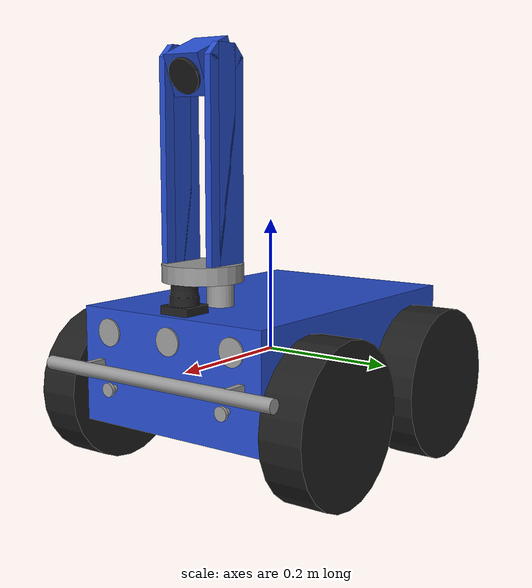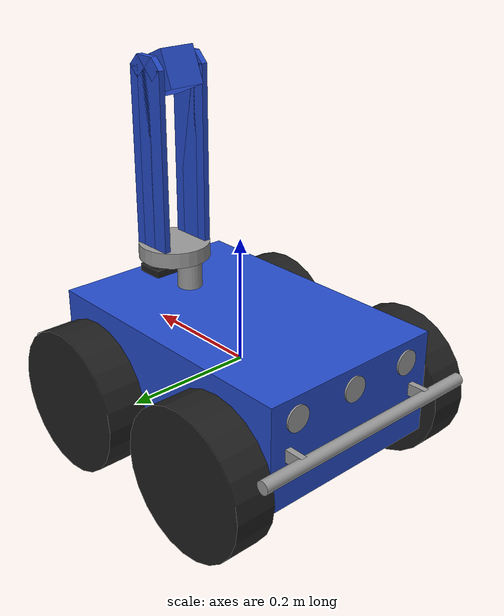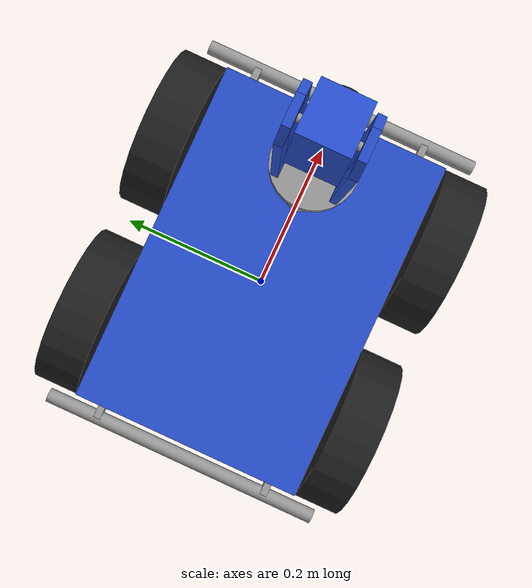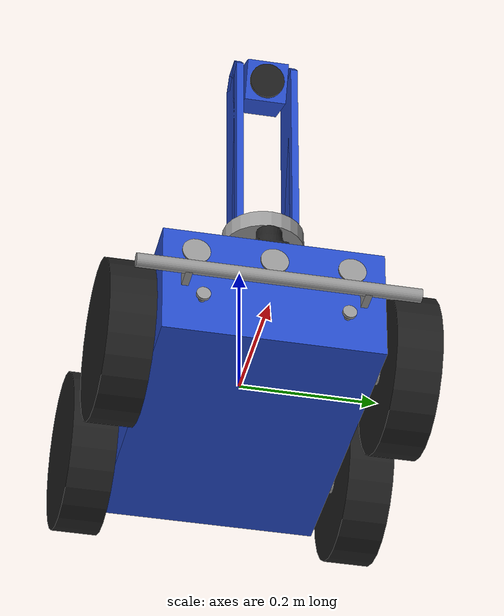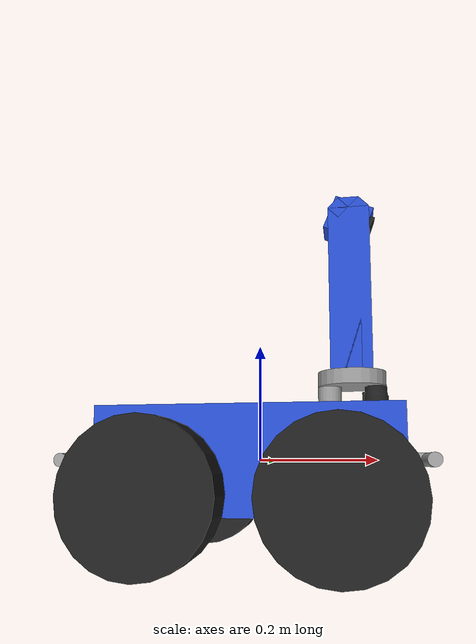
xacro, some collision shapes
<?xml version="1.0"?>
<robot name="shoddy" xmlns:xacro="http://www.ros.org/wiki/xacro">
    <xacro:include filename="$(find sim_pkg)/urdfs/robot.plugins.xacro"/>

    <xacro:include filename="$(find sim_pkg)/urdfs/materials.urdf.xacro"/>

    <xacro:include filename="$(find sim_pkg)/urdfs/base_macro.urdf.xacro"/>
    <xacro:include filename="$(find sim_pkg)/urdfs/wheel_macro.urdf.xacro"/>
    <xacro:include filename="$(find sim_pkg)/urdfs/imu_macro.urdf.xacro"/>
    <xacro:include filename="$(find sim_pkg)/urdfs/lidar_macro.urdf.xacro"/>
    <xacro:include filename="$(find sim_pkg)/urdfs/camera_macro.urdf.xacro"/>
    <xacro:include filename="$(find sim_pkg)/urdfs/ultrasonic_sensor_macro.urdf.xacro"/>

    <!-- Body -->
    <xacro:base_macro name="base_link"/>

    <!-- Wheels -->
    <xacro:wheel_macro
        side="left"
        part="front"
        xyz="${SHAFT_FRONT_X} 0.2 ${SHAFT_FRONT_Z}"
        parent="base_link"/>
    <xacro:wheel_macro
        side="left"
        part="rear"
        xyz="${SHAFT_REAR_X} 0.2 ${SHAFT_REAR_Z}"
        parent="base_link"/>
    <xacro:wheel_macro
        side="right"
        part="front"
        xyz="${SHAFT_FRONT_X} -0.2 ${SHAFT_FRONT_Z}"
        parent="base_link"/>
    <xacro:wheel_macro
        side="right"
        part="rear"
        xyz="${SHAFT_REAR_X} -0.2 ${SHAFT_REAR_Z}"
        parent="base_link"/>

    <!-- IMU -->
    <xacro:imu_macro name="imu_link" xyz="0.0 0.0 0.0" parent="base_link"/>

    <!-- LIDAR -->
    <xacro:lidar_macro name="sensor_laser_link" parent="base_link"/>

    <!-- Camera -->
    <xacro:camera_macro name="camera_link" parent="base_link"/>

    <!-- Ultrasonic sensors -->
    <xacro:ultrasonic_sensor_macro
        name="ultrasonic_sensor_front_left_link"
        xyz="${BASE_SIZE_X/2} ${-BASE_SIZE_Y/2*0.7} 0.05"
        parent="base_link"/>
    <xacro:ultrasonic_sensor_macro
        name="ultrasonic_sensor_front_middle_link"
        xyz="${BASE_SIZE_X/2} 0.0 0.05"
        parent="base_link"/>
    <xacro:ultrasonic_sensor_macro
        name="ultrasonic_sensor_front_right_link"
        xyz="${BASE_SIZE_X/2} ${BASE_SIZE_Y/2*0.7} 0.05"
        parent="base_link"/>
    <xacro:ultrasonic_sensor_macro
        name="ultrasonic_sensor_rear_left_link"
        xyz="${-BASE_SIZE_X/2} ${-BASE_SIZE_Y/2*0.7} 0.05"
        parent="base_link"/>
    <xacro:ultrasonic_sensor_macro
        name="ultrasonic_sensor_rear_middle_link"
        xyz="${-BASE_SIZE_X/2} 0.0 0.05"
        parent="base_link"/>
    <xacro:ultrasonic_sensor_macro
        name="ultrasonic_sensor_rear_right_link"
        xyz="${-BASE_SIZE_X/2} ${BASE_SIZE_Y/2*0.7} 0.05"
        parent="base_link"/>

</robot>

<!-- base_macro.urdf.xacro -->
<robot name="shoddy" xmlns:xacro="http://wiki.ros.org/xacro">
    <!-- Global properties ================================================= -->
    <!-- Shaft -->
    <xacro:property name="shaft_radius" value="0.015"/>
    <xacro:property name="shaft_length" value="0.38"/>

    <xacro:property name="SHAFT_FRONT_X" value="0.14"/>
    <xacro:property name="SHAFT_FRONT_Y" value="0.0"/>
    <xacro:property name="SHAFT_FRONT_Z" value="-0.05"/>

    <xacro:property name="SHAFT_REAR_X" value="-0.14"/>
    <xacro:property name="SHAFT_REAR_Y" value="0.0"/>
    <xacro:property name="SHAFT_REAR_Z" value="-0.05"/>
    <!-- Shaft -->

    <!-- Base -->
    <xacro:property name="BASE_SIZE_X" value="0.47"/>
    <xacro:property name="BASE_SIZE_Y" value="0.315"/>
    <xacro:property name="BASE_SIZE_Z" value="0.168"/>
    <!-- Base -->
    <!-- ================================================= Global properties -->

    <xacro:macro name="base_macro" params="name">
        <!-- Properties ==================================================== -->
        <!-- Bumper -->
        <xacro:property name="holder_size_x" value="0.03"/>
        <xacro:property name="holder_size_y" value="0.01"/>
        <xacro:property name="holder_size_z" value="0.02"/>

        <xacro:property name="holder_front_left_xyz" value="${BASE_SIZE_X/2 + holder_size_x/2} ${-BASE_SIZE_Y/2*0.8} 0.0"/>
        <xacro:property name="holder_front_right_xyz" value="${BASE_SIZE_X/2 + holder_size_x/2} ${BASE_SIZE_Y/2*0.8} 0.0"/>
        <xacro:property name="holder_rear_left_xyz" value="${-BASE_SIZE_X/2 - holder_size_x/2} ${-BASE_SIZE_Y/2*0.8} 0.0"/>
        <xacro:property name="holder_rear_right_xyz" value="${-BASE_SIZE_X/2 - holder_size_x/2} ${BASE_SIZE_Y/2*0.8} 0.0"/>

        <xacro:property name="bumper_radius" value="0.01"/>
        <xacro:property name="bumper_length" value="0.4"/>

        <xacro:property name="bumper_front_xyz" value="${BASE_SIZE_X/2 + holder_size_x} 0.0 0.0"/>
        <xacro:property name="bumper_rear_xyz" value="${-BASE_SIZE_X/2 - holder_size_x} 0.0 0.0"/>

        <xacro:property name="bumper_material" value="Grey"/>
        <!-- Bumper -->

        <!-- Accessory -->
        <xacro:property name="accessory_front_radius" value="0.01"/>
        <xacro:property name="accessory_front_length" value="0.005"/>
        <xacro:property name="accessory_rear_radius" value="0.005"/>
        <xacro:property name="accessory_rear_length" value="0.01"/>

        <xacro:property name="accessory_left_front_xyz" value="${BASE_SIZE_X/2 + accessory_front_length/2 + accessory_rear_length} ${-BASE_SIZE_Y/2*0.65} -0.03"/>
        <xacro:property name="accessory_left_rear_xyz" value="${BASE_SIZE_X/2 + accessory_rear_length/2} ${-BASE_SIZE_Y/2*0.65} -0.03"/>
        <xacro:property name="accessory_right_front_xyz" value="${BASE_SIZE_X/2 + accessory_front_length/2 + accessory_rear_length} ${BASE_SIZE_Y/2*0.65} -0.03"/>
        <xacro:property name="accessory_right_rear_xyz" value="${BASE_SIZE_X/2 + accessory_rear_length/2} ${BASE_SIZE_Y/2*0.65} -0.03"/>

        <xacro:property name="accessory_material" value="Grey"/>
        <!-- Accessory -->

        <!-- Shaft -->
        <xacro:property name="shaft_material" value="Grey"/>
        <!-- Shaft -->

        <!-- Base -->
        <xacro:property name="BASE_SIZE_X" value="0.47"/>
        <xacro:property name="BASE_SIZE_Y" value="0.315"/>
        <xacro:property name="BASE_SIZE_Z" value="0.168"/>
        <xacro:property name="base_mass" value="30"/>

        <xacro:property name="base_material" value="Blue"/>
        <!-- Base -->
        <!-- ==================================================== Properties -->

        <!-- Macros ======================================================== -->
        <!-- Bumper -->
        <!-- Holder -->
        <xacro:macro name="holder_macro" params="name xyz parent">
            <link name="${name}_link">
                <visual>
                    <origin xyz="0.0 0.0 0.0" rpy="0.0 0.0 0.0"/>
                    <geometry>
                        <box size="${holder_size_x} ${holder_size_y} ${holder_size_z}"/>
                    </geometry>
                    <material name="${bumper_material}"/>
                </visual>

                <collision>
                    <origin xyz="0.0 0.0 0.0" rpy="0.0 0.0 0.0"/>
                    <geometry>
                        <box size="${holder_size_x} ${holder_size_y} ${holder_size_z}"/>
                    </geometry>
                </collision>

                <inertial>
                    <origin xyz="0.0 0.0 0.0" rpy="0.0 0.0 0.0"/>
                    <mass value="0.0"/>
                    <inertia ixx="0.0" ixy="0.0" ixz="0.0" iyy="0.0" iyz="0.0" izz="0.0"/>
                </inertial>
            </link>

            <joint name="${name}_joint" type="fixed">
                <origin xyz="${xyz}" rpy="0.0 0.0 0.0"/>
                <parent link="${parent}"/>
                <child link="${name}_link"/>
            </joint>

            <gazebo reference="${name}_link">
                <material>Gazebo/Grey</material>
            </gazebo>

        </xacro:macro>
        <!-- Holder -->

        <!-- Rod -->
        <xacro:macro name="bumper_macro" params="name xyz parent">
            <link name="${name}_link">
                <visual>
                    <origin xyz="0.0 0.0 0.0" rpy="${pi/2} 0.0 0.0"/>
                    <geometry>
                        <cylinder radius="${bumper_radius}" length="${bumper_length}"/>
                    </geometry>
                    <material name="${bumper_material}"/>
                </visual>

                <collision>
                    <origin xyz="0.0 0.0 0.0" rpy="${pi/2} 0.0 0.0"/>
                    <geometry>
                        <cylinder radius="${bumper_radius}" length="${bumper_length}"/>
                    </geometry>
                </collision>

                <inertial>
                    <origin xyz="0.0 0.0 0.0" rpy="${pi/2} 0.0 0.0"/>
                    <mass value="0.0"/>
                    <inertia ixx="0.0" ixy="0.0" ixz="0.0" iyy="0.0" iyz="0.0" izz="0.0"/>
                </inertial>
            </link>

            <joint name="${name}_joint" type="fixed">
                <origin xyz="${xyz}" rpy="0.0 0.0 0.0"/>
                <parent link="${parent}"/>
                <child link="${name}_link"/>
            </joint>

            <gazebo reference="${name}_link">
                <material>Gazebo/Grey</material>
            </gazebo>

        </xacro:macro>
        <!-- Rod -->
        <!-- Bumper -->

        <!-- Accessory -->
        <xacro:macro name="accessory_macro" params="name radius length xyz parent">
            <link name="${name}_link">
                <visual>
                    <origin xyz="0.0 0.0 0.0" rpy="0.0 ${pi/2} 0.0"/>
                    <geometry>
                        <cylinder radius="${radius}" length="${length}"/>
                    </geometry>
                    <material name="${accessory_material}"/>
                </visual>

                <collision>
                    <origin xyz="0.0 0.0 0.0" rpy="0.0 ${pi/2} 0.0"/>
                    <geometry>
                        <cylinder radius="${radius}" length="${length}"/>
                    </geometry>
                </collision>

                <inertial>
                    <origin xyz="0.0 0.0 0.0" rpy="0.0 ${pi/2} 0.0"/>
                    <mass value="0.0"/>
                    <inertia ixx="0.0" ixy="0.0" ixz="0.0" iyy="0.0" iyz="0.0" izz="0.0"/>
                </inertial>
            </link>

            <joint name="${name}_joint" type="fixed">
                <origin xyz="${xyz}" rpy="0.0 0.0 0.0"/>
                <parent link="${parent}"/>
                <child link="${name}_link"/>
            </joint>

            <gazebo reference="${name}_link">
                <material>Gazebo/Grey</material>
            </gazebo>

        </xacro:macro>
        <!-- Accessory -->

        <!-- Shaft -->
        <xacro:macro name="shaft_macro" params="name xyz parent">
            <link name="${name}_link">
                <visual>
                    <origin xyz="0.0 0.0 0.0" rpy="${pi/2} 0.0 0.0"/>
                    <geometry>
                        <cylinder radius="${shaft_radius}" length="${shaft_length}"/>
                    </geometry>

                    <material name="${shaft_material}"/>
                </visual>

                <inertial>
                    <origin xyz="0.0 0.0 0.0" rpy="${pi/2} 0.0 0.0"/>
                    <mass value="0.0"/>
                    <inertia ixx="0.0" ixy="0.0" ixz="0.0" iyy="0.0" iyz="0.0" izz="0.0"/>
                </inertial>
            </link>

            <joint name="${name}_joint" type="fixed">
                <origin xyz="${xyz}" rpy="0.0 0.0 0.0"/>
                <parent link="${parent}"/>
                <child link="${name}_link"/>
            </joint>

            <gazebo reference="${name}_link">
                <material>Gazebo/Grey</material>
            </gazebo>

        </xacro:macro>
        <!-- Shaft -->

        <!-- Base -->
        <xacro:macro name="base_macro" params="name">
            <link name="${name}">
                <visual>
                    <origin xyz="0.0 0.0 0.0" rpy="0.0 0.0 0.0"/>
                    <geometry>
                        <box size="${BASE_SIZE_X} ${BASE_SIZE_Y} ${BASE_SIZE_Z}"/>
                    </geometry>
                    <material name="${base_material}"/>
                </visual>

                <collision>
                    <origin xyz="0.0 0.0 0.0" rpy="0.0 0.0 0.0"/>
                    <geometry>
                        <box size="${BASE_SIZE_X} ${BASE_SIZE_Y} ${BASE_SIZE_Z}"/>
                    </geometry>
                </collision>

                <inertial>
                    <origin xyz="0.0 0.0 0.0" rpy="0.0 0.0 0.0"/>
                    <mass value="${base_mass}"/>
                    <inertia ixx="1.0" ixy="0.0" ixz="0.0" iyy="1.0" iyz="0.0" izz="1.0"/>
                </inertial>
            </link>

            <gazebo reference="${name}_link">
                <material>Gazebo/Blue</material>
            </gazebo>

        </xacro:macro>
        <!-- Base -->
        <!-- ======================================================== Macros -->

        <!-- Links ========================================================= -->
        <!-- Base -->
        <xacro:base_macro name="${name}"/>
        <!-- Base -->

        <!-- Shafts -->
        <xacro:shaft_macro name="shaft_front"
                           xyz="${SHAFT_FRONT_X} ${SHAFT_FRONT_Y} ${SHAFT_FRONT_Z}"
                           parent="${name}"/>
        <xacro:shaft_macro name="shaft_rear"
                           xyz="${SHAFT_REAR_X} ${SHAFT_REAR_Y} ${SHAFT_REAR_Z}"
                           parent="${name}"/>
        <!-- Shafts -->

        <!-- Bumpers -->
        <xacro:bumper_macro name="bumper_front"
                            xyz="${bumper_front_xyz}"
                            parent="${name}"/>
        <xacro:holder_macro name="holder_front_left"
                            xyz="${holder_front_left_xyz}"
                            parent="${name}"/>
        <xacro:holder_macro name="holder_front_right"
                            xyz="${holder_front_right_xyz}"
                            parent="${name}"/>

        <xacro:bumper_macro name="bumper_rear"
                            xyz="${bumper_rear_xyz}"
                            parent="${name}"/>
        <xacro:holder_macro name="holder_rear_left"
                            xyz="${holder_rear_left_xyz}"
                            parent="${name}"/>
        <xacro:holder_macro name="holder_rear_right"
                            xyz="${holder_rear_right_xyz}"
                            parent="${name}"/>
        <!-- Bumpers -->

        <!-- Accessory-->
        <xacro:accessory_macro name="accessory_left_front"
                               radius="${accessory_front_radius}"
                               length="${accessory_front_length}"
                               xyz="${accessory_left_front_xyz}"
                               parent="${name}"/>
        <xacro:accessory_macro name="accessory_left_rear"
                               radius="${accessory_rear_radius}"
                               length="${accessory_rear_length}"
                               xyz="${accessory_left_rear_xyz}"
                               parent="${name}"/>

        <xacro:accessory_macro name="accessory_right_front"
                               radius="${accessory_front_radius}"
                               length="${accessory_front_length}"
                               xyz="${accessory_right_front_xyz}"
                               parent="${name}"/>
        <xacro:accessory_macro name="accessory_right_rear"
                               radius="${accessory_rear_radius}"
                               length="${accessory_rear_length}"
                               xyz="${accessory_right_rear_xyz}"
                               parent="${name}"/>
        <!-- Accessory-->
        <!-- ======================================================= Links -->
    </xacro:macro>
</robot>

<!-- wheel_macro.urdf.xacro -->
<robot name="shoddy" xmlns:xacro="http://www.ros.org/wiki/xacro">
    <xacro:macro name="wheel_macro" params="side part xyz parent">
        <!-- Properties ==================================================== -->
        <xacro:property name="radius" value="0.115"/>
        <xacro:property name="length" value="0.065"/>
        <xacro:property name="mass" value="0.5"/>

        <xacro:property name="Cr" value="${0.001/0.033}"/>
        <xacro:property name="Cl" value="${0.001/0.018}"/>
        <xacro:property name="ixx" value="${1/12.0*mass*(3*radius*radius + length*length)}"/>
        <xacro:property name="iyy" value="${ixx}"/>
        <xacro:property name="izz" value="${0.5*mass*radius*radius}"/>

        <!-- ==================================================== Properties -->

        <!-- Link ========================================================== -->
        <link name="wheel_${side}_${part}_link">
            <visual>
                <origin xyz="0.0 0.0 0.0" rpy="${pi/2*0.0} 0.0 0.0"/>
                <geometry>
                    <mesh filename="file://$(find sim_pkg)/meshes/wheels/${side}_tire.stl" scale="${Cr*radius} ${Cl*length} ${Cr*radius}"/>
                </geometry>
                <material name="Black"/>
            </visual>
            <collision>
                <origin xyz="0.0 0.0 0.0" rpy="${pi/2} 0.0 0.0"/>
                <geometry>
                    <cylinder radius="${radius}" length="${length}"/>
                </geometry>
                <surface>
                    <friction>
                        <torsional>
                            <coefficient>0.0</coefficient>
                            <use_patch>1</use_patch>
                        </torsional>

                        <ode>
                            <mu>1.0</mu>
                            <mu2>0.05</mu2>
                        </ode>
                    </friction>
                </surface>

            </collision>
            <inertial>
                <origin xyz="0.0 0.0 0.0" rpy="${pi/2} 0 0"/>
                <mass value="${mass}"/>
            <inertia ixx="${ixx}" ixy="0.0" ixz="0.0"
                         iyy="${iyy}" iyz="0.0"
                         izz="${izz}"/>
            </inertial>

        </link>

        <joint name="wheel_${side}_${part}_to_base_joint" type="continuous">
            <axis xyz="0.0 1.0 0.0"/>
            <origin xyz="${xyz}" rpy="0.0 0.0 0.0"/>
            <parent link="${parent}"/>
            <child link="wheel_${side}_${part}_link"/>
        </joint>

        <gazebo reference="wheel_${side}_${part}_link">
            <mu1 value="1.0"/>
            <mu2 value="1.0"/>
            <kp value="100000.0"/>
            <kd value="1.0"/>
            <minDepth>0.002</minDepth>
            <maxVel>0.3</maxVel>
            <fdir1>0 1 0</fdir1>
            <material>Gazebo/FlatBlack</material>
        </gazebo>
        <!-- ========================================================== Link -->
    </xacro:macro>
</robot>

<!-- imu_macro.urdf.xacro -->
<robot name="shoddy" xmlns:xacro="http://wiki.ros.org/xacro">
    <xacro:macro name="imu_macro" params="name xyz parent">
        <!-- Properties ==================================================== -->
        <xacro:property name="box_size_x" value="0.001"/>
        <xacro:property name="box_size_y" value="0.001"/>
        <xacro:property name="box_size_z" value="0.001"/>

        <xacro:property name="imu_material" value="Black"/>
        <!-- ==================================================== Properties -->

        <!-- Link ========================================================== -->
        <link name="${name}">
            <visual>
                <origin rpy="0.0 0.0 0.0" xyz="0.0 0.0 0.0"/>
                <geometry>
                    <box size="${box_size_x} ${box_size_y} ${box_size_z}"/>
                </geometry>
                <material name="${imu_material}"/>
            </visual>

            <collision>
                <origin rpy="0 0 0" xyz="0 0 0"/>
                <geometry>
                    <box size="${box_size_x} ${box_size_y} ${box_size_z}"/>
                </geometry>
            </collision>

            <inertial>
                <mass value="0.1"/>
                <origin rpy="0.0 0.0 0.0" xyz="0.0 0.0 0.0"/>
                <!-- zmena ienrtial z 1e-6 -->
                <inertia ixx="0.0" ixy="0.0" ixz="0.0" iyy="0.0" iyz="0.0" izz="0.0"/>
            </inertial>
        </link>

        <joint name="imu_joint" type="fixed">
            <axis xyz="0.0 0.0 0.0"/>
            <origin xyz="${xyz}"/>
            <parent link="${parent}"/>
            <child link="${name}"/>
        </joint>

        <gazebo reference="${name}">
            <material>Gazebo/Black</material>
        </gazebo>
        <!-- Gazebo IMU Sensor -->
        <gazebo reference="${name}">
            <sensor name="${name}_imu" type="imu">
                <always_on>1</always_on>
                <update_rate>50</update_rate>
                <topic>imu</topic>
                <gz_frame_id>${name}</gz_frame_id>

                <imu>
                    <enable_orientation>1</enable_orientation>
                    <angular_velocity>
                        <z>
                        <noise type="gaussian">
                            <mean>0</mean>
                            <stddev>0.00838</stddev>
                            <bias_mean>0.0</bias_mean>
                            <bias_stddev>0.000873</bias_stddev>
                        </noise>
                        </z>
                    </angular_velocity>
                </imu>
            </sensor>

        </gazebo>

        <!-- ========================================================== Link -->
    </xacro:macro>

</robot>

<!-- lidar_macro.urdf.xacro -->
<robot name="shoddy" xmlns:xacro="http://www.ros.org/wiki/xacro">
    <xacro:macro name="lidar_macro" params="name parent">
        <!-- Properties -->
        <xacro:property name="size_x" value="0.03"/>
        <xacro:property name="size_y" value="0.03"/>
        <xacro:property name="size_z" value="0.04"/>

        <xacro:property name="origin_x" value="0.20"/>
        <xacro:property name="origin_y" value="0.0"/>
        <xacro:property name="origin_z" value="0.09"/>

        <!-- Link -->
        <link name="${name}">
            <visual>
                <origin xyz="0.0 0.0 0.0" rpy="0.0 0.0 0.0"/>
                <geometry>
                    <mesh filename="file://$(find sim_pkg)/meshes/lidar/lidar.stl"/>
                </geometry>
            </visual>
            <!-- Instead of box, its possible to use the same stl file for collision -->
            <collision>
                <origin xyz="0.0 0.0 0.0" rpy="0.0 0.0 0.0"/>
                <geometry>
                    <box size="${size_x} ${size_y} ${size_z}"/>
                </geometry>
            </collision>

            <inertial>
                <mass value="0.1"/>
                <origin xyz="0 0 0" rpy="0 0 0"/>
                <inertia ixx="1e-5" ixy="0" ixz="0" iyy="1e-5" iyz="0" izz="1e-5"/>
            </inertial>
        </link>

        <joint name="sensor_laser_joint" type="fixed">
            <origin xyz="${origin_x} ${origin_y} ${origin_z}" rpy="0.0 0.0 0.0"/>
            <parent link="${parent}"/>
            <child link="${name}"/>
        </joint>

        <gazebo reference="${name}">
            <material>Gazebo/Black</material>

            <sensor name='gpu_lidar' type='gpu_lidar'>
                <always_on>true</always_on>
                <visualize>true</visualize>
                <pose>0 0 0 0 0 0</pose>
                <update_rate>40</update_rate>
                <topic>scan</topic>
                <gz_frame_id>sensor_laser_link</gz_frame_id>
                <lidar>
                    <scan>
                        <horizontal>
                            <samples>1080</samples>
                            <resolution>1</resolution>
                            <min_angle>-2.356</min_angle>
                            <max_angle>2.356</max_angle>
                        </horizontal>
                    </scan>
                    <range>
                        <min>0.1</min>
                        <max>30.0</max>
                        <resolution>0.01</resolution>
                    </range>
                </lidar>
            </sensor>

        </gazebo>
    </xacro:macro>

</robot>

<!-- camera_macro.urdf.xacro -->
<robot name="shoddy" xmlns:xacro="http://wiki.ros.org/xacro">
    <xacro:macro name="camera_macro" params="name parent">
        <!-- Properties ==================================================== -->
        <!-- Base -->
        <!-- Base upper -->
        <xacro:property name="base_upper_radius" value="0.058"/>
        <xacro:property name="base_upper_length" value="0.025"/>

        <xacro:property name="base_upper_x" value="0.16"/>
        <xacro:property name="base_upper_y" value="0.0"/>
        <xacro:property name="base_upper_z" value="${BASE_SIZE_Z/2 + base_lower_length + base_upper_length/2}"/>

        <!-- Base lower -->
        <xacro:property name="base_lower_radius" value="0.02"/>
        <xacro:property name="base_lower_length" value="0.041"/>

        <xacro:property name="base_lower_x" value="${base_upper_x - base_upper_radius + base_lower_radius}"/>
        <xacro:property name="base_lower_y" value="0.0"/>
        <xacro:property name="base_lower_z" value="${BASE_SIZE_Z/2 + base_lower_length/2}"/>

        <!-- Base holder -->
        <xacro:property name="base_holder_radius" value="0.005"/>
        <xacro:property name="base_holder_length" value="${box_size_y + 0.01}"/>

        <xacro:property name="base_holder_x" value="${box_x}"/>
        <xacro:property name="base_holder_y" value="${box_y}"/>
        <xacro:property name="base_holder_z" value="${box_z}"/>

        <xacro:property name="pitch" value="${pi/8}"/>

        <xacro:property name="base_material" value="Grey"/>
        <!-- Base -->

        <!-- Holder -->
        <xacro:property name="C" value="${sqrt(2)}"/>

        <xacro:property name="holder_lower_width" value="${box_size_x}"/>
        <xacro:property name="holder_upper_width" value="${box_size_x/2}"/>
        <xacro:property name="holder_height" value="0.30"/>
        <xacro:property name="holder_width" value="0.01"/>

        <xacro:property name="holder_corner_size" value="${1/C*(holder_lower_width - holder_upper_width)}"/>

        <xacro:property name="holder_x" value="${base_upper_x}"/>
        <xacro:property name="holder_left_y" value="${-box_size_y/2 - holder_width/2 - 0.005}"/>
        <xacro:property name="holder_right_y" value="${box_size_y/2 + holder_width/2 + 0.005}"/>
        <xacro:property name="holder_z" value="${base_upper_z + base_upper_length/2}"/>

        <xacro:property name="holder_material" value="Blue"/>
        <!-- Holder -->

        <!-- Box -->
        <xacro:property name="box_size_x" value="0.07"/>
        <xacro:property name="box_size_y" value="0.06"/>
        <xacro:property name="box_size_z" value="0.06"/>

        <xacro:property name="box_x" value="${base_upper_x}"/>
        <xacro:property name="box_y" value="${base_upper_y}"/>
        <xacro:property name="box_z" value="${base_upper_z + base_upper_length/2 + holder_height - box_size_z/2}"/>

        <xacro:property name="box_material" value="DarkGrey"/>
        <!-- Box -->

        <!-- Lens -->
        <xacro:property name="lens_radius" value="0.025"/>
        <xacro:property name="lens_length" value="0.005"/>

        <xacro:property name="lens_x" value="${box_x + lens_shift_x*cos(pitch)}"/>
        <xacro:property name="lens_y" value="${box_y}"/>
        <xacro:property name="lens_z" value="${box_z - lens_shift_x*sin(pitch)}"/>

        <xacro:property name="lens_shift_x" value="${box_size_x/2 + lens_length/2}"/>

        <xacro:property name="lens_material" value="Black"/>
        <!-- Lens -->
        <!-- ==================================================== Properties -->

        <!-- Macros ======================================================== -->
        <!-- Base -->
        <xacro:macro name="base_macro" params="name radius length x y z rpy parent">
            <link name="${name}_link">
                <visual>
                    <origin xyz="0.0 0.0 0.0" rpy="0.0 0.0 0.0"/>
                    <geometry>
                        <cylinder radius="${radius}" length="${length}"/>
                    </geometry>
                    <material name="${base_material}"/>
                </visual>

                <collision>
                    <origin xyz="0.0 0.0 0.0" rpy="0.0 0.0 0.0"/>
                    <geometry>
                        <cylinder radius="${radius}" length="${length}"/>
                    </geometry>
                </collision>

                <inertial>
                    <origin xyz="0.0 0.0 0.0" rpy="0.0 0.0 0.0"/>
                    <mass value="0.0"/>
                    <inertia ixx="0.0" ixy="0.0" ixz="0.0" iyy="0.0" iyz="0.0" izz="0.0"/>
                </inertial>
            </link>

            <joint name="${name}_joint" type="fixed">
                <origin xyz="${x} ${y} ${z}" rpy="${rpy}"/>
                <parent link="${parent}"/>
                <child link="${name}_link"/>
            </joint>

            <gazebo reference="${name}_link">
                <material>Gazebo/Grey</material>
            </gazebo>

        </xacro:macro>
        <!-- Base -->

        <!-- Holder -->
        <xacro:macro name="holder_macro" params="name x y z parent">
            <xacro:macro name="box_macro" params="name size xyz rpy parent">
                <link name="${name}_link">
                    <visual>
                        <origin xyz="0.0 0.0 0.0" rpy="0.0 0.0 0.0"/>
                        <geometry>
                            <box size="${size}"/>
                        </geometry>
                        <material name="${holder_material}"/>
                    </visual>

                    <collision>
                        <origin xyz="0.0 0.0 0.0" rpy="0.0 0.0 0.0"/>
                        <geometry>
                            <box size="${size}"/>
                        </geometry>
                    </collision>

                    <inertial>
                        <origin xyz="0.0 0.0 0.0" rpy="0.0 0.0 0.0"/>
                        <mass value="0.0"/>
                        <inertia ixx="0.0" ixy="0.0" ixz="0.0" iyy="0.0" iyz="0.0" izz="0.0"/>
                    </inertial>
                </link>

                <joint name="${name}_joint" type="fixed">
                    <origin xyz="${xyz}"
                            rpy="${rpy}"/>
                    <parent link="${parent}"/>
                    <child link="${name}_link"/>
                </joint>

                <gazebo reference="${name}_link">
                    <material>Gazebo/FlatBlack</material>
                </gazebo>
            </xacro:macro>

            <xacro:box_macro name="${name}_1"
                             size="${holder_lower_width} ${holder_width} ${holder_height - C/2*holder_corner_size}"
                             xyz="${x} ${y} ${z + (holder_height - C/2*holder_corner_size)/2}"
                             rpy="0.0 0.0 0.0"
                             parent="${parent}"/>
            <xacro:box_macro name="${name}_2"
                             size="${holder_upper_width} ${holder_width} ${holder_height}"
                             xyz="${x} ${y} ${z + holder_height/2}"
                             rpy="0.0 0.0 0.0"
                             parent="${parent}"/>
            <xacro:box_macro name="${name}_3"
                             size="${holder_corner_size} ${holder_width} ${holder_corner_size} "
                             xyz="${x - holder_upper_width/2} ${y} ${z + (holder_height - C/2*holder_corner_size)}"
                             rpy="0.0 ${pi/4} 0.0"
                             parent="${parent}"/>
            <xacro:box_macro name="${name}_4"
                             size="${holder_corner_size} ${holder_width} ${holder_corner_size} "
                             xyz="${x + holder_upper_width/2} ${y} ${z + (holder_height - C/2*holder_corner_size)}"
                             rpy="0.0 ${pi/4} 0.0"
                             parent="${parent}"/>
        </xacro:macro>
        <!-- Holder -->

        <!-- Box -->
        <xacro:macro name="box_macro" params="name size xyz rpy parent">
            <link name="${name}_link">
                <visual>
                    <origin xyz="0.0 0.0 0.0" rpy="0.0 0.0 0.0"/>
                    <geometry>
                        <box size="${size}"/>
                    </geometry>
                    <material name="${box_material}"/>
                </visual>

                <collision>
                    <origin xyz="0.0 0.0 0.0" rpy="0.0 0.0 0.0"/>
                    <geometry>
                        <box size="${size}"/>
                    </geometry>
                </collision>

                <inertial>
                    <origin xyz="0.0 0.0 0.0" rpy="0.0 0.0 0.0"/>
                    <mass value="0.0"/>
                    <inertia ixx="0.0" ixy="0.0" ixz="0.0" iyy="0.0" iyz="0.0" izz="0.0"/>
                </inertial>
            </link>

            <joint name="${name}_joint" type="fixed">
                <origin xyz="${xyz}"
                        rpy="${rpy}"/>
                <parent link="${parent}"/>
                <child link="${name}_link"/>
            </joint>

            <gazebo reference="${name}_link">
                    <material>Gazebo/FlatBlack</material>
            </gazebo>

        </xacro:macro>
        <!-- Box -->

        <!-- Lens -->
        <xacro:macro name="lens_macro" params="name radius length xyz rpy parent">
        <link name="${name}">
            <visual>
                <origin xyz="0.0 0.0 0.0" rpy="0.0 ${pi/2} 0.0"/>
                <geometry>
                    <cylinder radius="${radius}" length="${length}"/>
                </geometry>
                <material name="${lens_material}"/>
            </visual>

            <collision>
                <origin xyz="0.0 0.0 0.0" rpy="0.0 ${pi/2} 0.0"/>
                <geometry>
                    <cylinder radius="${radius}" length="${length}"/>
                </geometry>
            </collision>

            <inertial>
                <origin xyz="0.0 0.0 0.0" rpy="0.0 ${pi/2} 0.0"/>
                <mass value="0.0"/>
                <inertia ixx="0.0" ixy="0.0" ixz="0.0" iyy="0.0" iyz="0.0" izz="0.0"/>
            </inertial>
        </link>

        <joint name="camera_lens_joint" type="fixed">
            <origin xyz="${xyz}"
                    rpy="${rpy}"/>
            <parent link="${parent}"/>
            <child link="${name}"/>
        </joint>

        <gazebo reference="${name}">
            <material>Gazebo/Black</material>
        </gazebo>

        </xacro:macro>
        <!-- Lens -->
        <!-- ======================================================== Macros -->

        <!-- Links ========================================================= -->
        <xacro:base_macro name="camera_base_upper"
                          radius="${base_upper_radius}"
                          length="${base_upper_length}"
                          x="${base_upper_x}"
                          y="${base_upper_y}"
                          z="${base_upper_z}"
                          rpy="0.0 0.0 0.0"
                          parent="${parent}"/>

        <xacro:base_macro name="camera_base_lower"
                          radius="${base_lower_radius}"
                          length="${base_lower_length}"
                          x="${base_lower_x}"
                          y="${base_lower_y}"
                          z="${base_lower_z}"
                          rpy="0.0 0.0 0.0"
                          parent="${parent}"/>

        <xacro:base_macro name="camera_base_holder"
                          radius="${base_holder_radius}"
                          length="${base_holder_length}"
                          x="${base_holder_x}"
                          y="${base_holder_y}"
                          z="${base_holder_z}"
                          rpy="${pi/2} 0.0 0.0"
                          parent="${parent}"/>

        <xacro:holder_macro name="camera_holder_left"
                            x="${holder_x}"
                            y="${holder_left_y}"
                            z="${holder_z}"
                            parent="${parent}"/>

        <xacro:holder_macro name="camera_holder_right"
                            x="${holder_x}"
                            y="${holder_right_y}"
                            z="${holder_z}"
                            parent="${parent}"/>

        <xacro:box_macro name="camera_box"
                         size="${box_size_x} ${box_size_y} ${box_size_z}"
                         xyz="${box_x} ${box_y} ${box_z}"
                         rpy= "0.0 ${pitch} 0.0"
                         parent="${parent}"/>

        <xacro:lens_macro name="${name}"
                          radius="${lens_radius}"
                          length="${lens_length}"
                          xyz="${lens_x} ${lens_y} ${lens_z}"
                          rpy="0.0 ${pitch} 0.0"
                          parent="${parent}"/>
        <!-- ========================================================= Links -->

        <!-- kinect V2 specs for RGB-D plugin, -->
        <gazebo reference="${name}">
            <sensor name="${name}_rgbd" type="rgbd_camera">
                <always_on>true</always_on>
                <update_rate>30</update_rate>
                <topic>/camera_link/rgbd</topic>
                <frame_id>camera_link</frame_id>
                <camera>
                    <horizontal_fov>1.2217</horizontal_fov>
                    <image>
                    <!-- depth resolution -->
                        <width>512</width>
                        <height>424</height>
                    </image>
                    <clip>
                        <near>0.5</near>
                        <far>4.5</far>
                    </clip>
                    <depth_camera>
                        <clip>
                            <near>0.5</near>
                            <far>4.5</far>
                        </clip>
                    </depth_camera>
                </camera>
            </sensor>
        </gazebo>
        <!-- kinect V2 specs for RGB-D plugin, -->
    </xacro:macro>
</robot>

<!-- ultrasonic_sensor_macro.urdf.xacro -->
<robot name="shoddy" xmlns:xacro="http://www.ros.org/wiki/xacro">
    <xacro:macro name="ultrasonic_sensor_macro" params="name xyz parent">
        <!-- Properties ==================================================== -->
        <!-- Ultrasonic sensor -->
        <xacro:property name="ultrasonic_sensor_radius" value="0.02"/>
        <xacro:property name="ultrasonic_sensor_length" value="0.005"/>

        <xacro:property name="ultrasonic_sensor_left_xyz" value="${base_size_x/2 + ultrasonic_sensor_length/2} ${-base_size_y/2*0.6} 0.05"/>
        <xacro:property name="ultrasonic_sensor_middle_xyz" value="${base_size_x/2 + ultrasonic_sensor_length/2} 0.0 -0.03"/>
        <xacro:property name="ultrasonic_sensor_right_xyz" value="${base_size_x/2 + ultrasonic_sensor_length/2} ${base_size_y/2*0.6} 0.05"/>

        <xacro:property name="ultrasonic_sensor_x"/>
        <xacro:property name="ultrasonic_sensor_y"/>
        <xacro:property name="ultrasonic_sensor_z"/>

        <xacro:property name="ultrasonic_sensor_material" value="Grey"/>
        <!-- ==================================================== Properties -->

        <!-- Links ========================================================= -->
        <link name="${name}">
            <visual>
                <origin xyz="0.0 0.0 0.0" rpy="0.0 ${pi/2} 0.0"/>
                <geometry>
                    <cylinder radius="${ultrasonic_sensor_radius}" length="${ultrasonic_sensor_length}"/>
                </geometry>
                <material name="${ultrasonic_sensor_material}"/>
            </visual>

            <collision>
                <origin xyz="0.0 0.0 0.0" rpy="0.0 ${pi/2} 0.0"/>
                <geometry>
                    <cylinder radius="${ultrasonic_sensor_radius}" length="${ultrasonic_sensor_length}"/>
                </geometry>
            </collision>
            <inertial>
                <origin xyz="0.0 0.0 0.0" rpy="0.0 ${pi/2} 0.0"/>
                <mass value="0.0"/>
                <inertia ixx="0.0" ixy="0.0" ixz="0.0" iyy="0.0" iyz="0.0" izz="0.0"/>
            </inertial>
        </link>

        <joint name="${name}_joint" type="fixed">
            <origin xyz="${xyz}" rpy="0.0 0.0 0.0"/>
            <parent link="${parent}"/>
            <child link="${name}"/>
        </joint>
        <gazebo reference="${name}">
            <material>Gazebo/Grey</material>
        </gazebo>

        <!-- ========================================================= Links -->
    </xacro:macro>
</robot>
